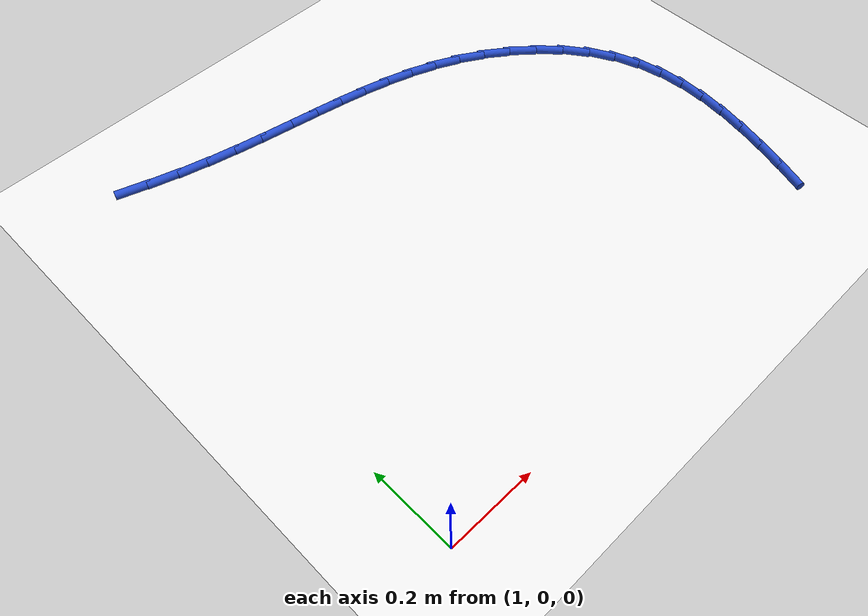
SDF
<sdf version="1.6">
 <world name="default">
  <model name="ground_plane">
   <static>1</static>
   <link name="link">
    <collision name="collision">
     <geometry><plane><normal>0 0 1</normal><size>100 100</size></plane></geometry>
     <surface><friction><ode><mu>100</mu><mu2>50</mu2></ode></friction></surface>
    </collision>
    <visual name="visual">
     <cast_shadows>0</cast_shadows>
     <geometry><plane><normal>0 0 1</normal><size>100 100</size></plane></geometry>
     <material>
      <script><uri>file://media/materials/scripts/gazebo.material</uri><name>Gazebo/WhiteGlow</name></script>
     </material>
    </visual>
   </link>
  </model>
  <model name="line">
   <link name="link_28">
    <pose>1.0675761054680557 1.0647344751387855 0.01 0 1.57 -0.3209154916095877</pose>
    <collision name="collision">
     <geometry><cylinder><radius>0.01</radius><length>0.08</length></cylinder></geometry>
    </collision>
    <visual name="visual">
     <material>
      <script><name>Gazebo/Blue</name><uri>file://media/materials/scripts/gazebo.material</uri></script>
     </material>
     <geometry><cylinder><radius>0.01</radius><length>0.08</length></cylinder></geometry>
    </visual>
   </link>
   <link name="link_29">
    <pose>1.134693563811854 1.0424242464777238 0.01 0 1.57 -0.28615254933465367</pose>
    <collision name="collision">
     <geometry><cylinder><radius>0.01</radius><length>0.08</length></cylinder></geometry>
    </collision>
    <visual name="visual">
     <material>
      <script><name>Gazebo/Blue</name><uri>file://media/materials/scripts/gazebo.material</uri></script>
     </material>
     <geometry><cylinder><radius>0.01</radius><length>0.08</length></cylinder></geometry>
    </visual>
   </link>
   <link name="link_30">
    <pose>1.2016770970256212 1.0227158486725751 0.01 0 1.57 -0.24338765268305662</pose>
    <collision name="collision">
     <geometry><cylinder><radius>0.01</radius><length>0.08</length></cylinder></geometry>
    </collision>
    <visual name="visual">
     <material>
      <script><name>Gazebo/Blue</name><uri>file://media/materials/scripts/gazebo.material</uri></script>
     </material>
     <geometry><cylinder><radius>0.01</radius><length>0.08</length></cylinder></geometry>
    </visual>
   </link>
   <link name="link_31">
    <pose>1.2682371025835748 1.0061883189100853 0.01 0 1.57 -0.20988822675928412</pose>
    <collision name="collision">
     <geometry><cylinder><radius>0.01</radius><length>0.08</length></cylinder></geometry>
    </collision>
    <visual name="visual">
     <material>
      <script><name>Gazebo/Blue</name><uri>file://media/materials/scripts/gazebo.material</uri></script>
     </material>
     <geometry><cylinder><radius>0.01</radius><length>0.08</length></cylinder></geometry>
    </visual>
   </link>
   <link name="link_32">
    <pose>1.3342585128598758 0.9921240686305991 0.01 0 1.57 -0.18753112951149467</pose>
    <collision name="collision">
     <geometry><cylinder><radius>0.01</radius><length>0.08</length></cylinder></geometry>
    </collision>
    <visual name="visual">
     <material>
      <script><name>Gazebo/Blue</name><uri>file://media/materials/scripts/gazebo.material</uri></script>
     </material>
     <geometry><cylinder><radius>0.01</radius><length>0.08</length></cylinder></geometry>
    </visual>
   </link>
   <link name="link_33">
    <pose>1.3996380957625818 0.9797175826879861 0.01 0 1.57 -0.17689413309905302</pose>
    <collision name="collision">
     <geometry><cylinder><radius>0.01</radius><length>0.08</length></cylinder></geometry>
    </collision>
    <visual name="visual">
     <material>
      <script><name>Gazebo/Blue</name><uri>file://media/materials/scripts/gazebo.material</uri></script>
     </material>
     <geometry><cylinder><radius>0.01</radius><length>0.08</length></cylinder></geometry>
    </visual>
   </link>
   <link name="link_34">
    <pose>1.4642726191997506 0.9681633459361156 0.01 0 1.57 -0.17848744052892332</pose>
    <collision name="collision">
     <geometry><cylinder><radius>0.01</radius><length>0.08</length></cylinder></geometry>
    </collision>
    <visual name="visual">
     <material>
      <script><name>Gazebo/Blue</name><uri>file://media/materials/scripts/gazebo.material</uri></script>
     </material>
     <geometry><cylinder><radius>0.01</radius><length>0.08</length></cylinder></geometry>
    </visual>
   </link>
   <link name="link_35">
    <pose>1.5280588510794397 0.9566558432288573 0.01 0 1.57 -0.19279048888477546</pose>
    <collision name="collision">
     <geometry><cylinder><radius>0.01</radius><length>0.08</length></cylinder></geometry>
    </collision>
    <visual name="visual">
     <material>
      <script><name>Gazebo/Blue</name><uri>file://media/materials/scripts/gazebo.material</uri></script>
     </material>
     <geometry><cylinder><radius>0.01</radius><length>0.08</length></cylinder></geometry>
    </visual>
   </link>
   <link name="link_36">
    <pose>1.5908935593097069 0.9443895594200805 0.01 0 1.57 -0.22023712301039977</pose>
    <collision name="collision">
     <geometry><cylinder><radius>0.01</radius><length>0.08</length></cylinder></geometry>
    </collision>
    <visual name="visual">
     <material>
      <script><name>Gazebo/Blue</name><uri>file://media/materials/scripts/gazebo.material</uri></script>
     </material>
     <geometry><cylinder><radius>0.01</radius><length>0.08</length></cylinder></geometry>
    </visual>
   </link>
   <link name="link_37">
    <pose>1.6526735117986098 0.9305589793636547 0.01 0 1.57 -0.26113416115301497</pose>
    <collision name="collision">
     <geometry><cylinder><radius>0.01</radius><length>0.08</length></cylinder></geometry>
    </collision>
    <visual name="visual">
     <material>
      <script><name>Gazebo/Blue</name><uri>file://media/materials/scripts/gazebo.material</uri></script>
     </material>
     <geometry><cylinder><radius>0.01</radius><length>0.08</length></cylinder></geometry>
    </visual>
   </link>
   <link name="link_38">
    <pose>1.7132954764542063 0.9143585879134493 0.01 0 1.57 -0.31550327644231246</pose>
    <collision name="collision">
     <geometry><cylinder><radius>0.01</radius><length>0.08</length></cylinder></geometry>
    </collision>
    <visual name="visual">
     <material>
      <script><name>Gazebo/Blue</name><uri>file://media/materials/scripts/gazebo.material</uri></script>
     </material>
     <geometry><cylinder><radius>0.01</radius><length>0.08</length></cylinder></geometry>
    </visual>
   </link>
   <link name="link_39">
    <pose>1.7726562211845542 0.8949828699233339 0.01 0 1.57 -0.38285334538468285</pose>
    <collision name="collision">
     <geometry><cylinder><radius>0.01</radius><length>0.08</length></cylinder></geometry>
    </collision>
    <visual name="visual">
     <material>
      <script><name>Gazebo/Blue</name><uri>file://media/materials/scripts/gazebo.material</uri></script>
     </material>
     <geometry><cylinder><radius>0.01</radius><length>0.08</length></cylinder></geometry>
    </visual>
   </link>
   <link name="link_40">
    <pose>1.8306525138977103 0.8716263102471774 0.01 0 1.57 -0.46192823847512915</pose>
    <collision name="collision">
     <geometry><cylinder><radius>0.01</radius><length>0.08</length></cylinder></geometry>
    </collision>
    <visual name="visual">
     <material>
      <script><name>Gazebo/Blue</name><uri>file://media/materials/scripts/gazebo.material</uri></script>
     </material>
     <geometry><cylinder><radius>0.01</radius><length>0.08</length></cylinder></geometry>
    </visual>
   </link>
   <link name="link_41">
    <pose>1.8871811225017328 0.84348339373885 0.01 0 1.57 -0.5505024417942268</pose>
    <collision name="collision">
     <geometry><cylinder><radius>0.01</radius><length>0.08</length></cylinder></geometry>
    </collision>
    <visual name="visual">
     <material>
      <script><name>Gazebo/Blue</name><uri>file://media/materials/scripts/gazebo.material</uri></script>
     </material>
     <geometry><cylinder><radius>0.01</radius><length>0.08</length></cylinder></geometry>
    </visual>
   </link>
   <link name="link_42">
    <pose>1.942134524961983 0.8097531747299335 0.01 0 1.57 -0.6436142111896431</pose>
    <collision name="collision">
     <geometry><cylinder><radius>0.01</radius><length>0.08</length></cylinder></geometry>
    </collision>
    <visual name="visual">
     <material>
      <script><name>Gazebo/Blue</name><uri>file://media/materials/scripts/gazebo.material</uri></script>
     </material>
     <geometry><cylinder><radius>0.01</radius><length>0.08</length></cylinder></geometry>
    </visual>
   </link>
   <link name="link_43">
    <pose>1.994909787936023 0.7701624001320424 0.01 0 1.57 -0.7392321456740065</pose>
    <collision name="collision">
     <geometry><cylinder><radius>0.01</radius><length>0.08</length></cylinder></geometry>
    </collision>
    <visual name="visual">
     <material>
      <script><name>Gazebo/Blue</name><uri>file://media/materials/scripts/gazebo.material</uri></script>
     </material>
     <geometry><cylinder><radius>0.01</radius><length>0.08</length></cylinder></geometry>
    </visual>
   </link>
   <link name="link_44">
    <pose>2.0439542918104765 0.7254493852054407 0.01 0 1.57 -0.842858920840327</pose>
    <collision name="collision">
     <geometry><cylinder><radius>0.01</radius><length>0.08</length></cylinder></geometry>
    </collision>
    <visual name="visual">
     <material>
      <script><name>Gazebo/Blue</name><uri>file://media/materials/scripts/gazebo.material</uri></script>
     </material>
     <geometry><cylinder><radius>0.01</radius><length>0.08</length></cylinder></geometry>
    </visual>
   </link>
   <link name="link_45">
    <pose>2.0876080253577096 0.676466834521067 0.01 0 1.57 -0.9610523397277894</pose>
    <collision name="collision">
     <geometry><cylinder><radius>0.01</radius><length>0.08</length></cylinder></geometry>
    </collision>
    <visual name="visual">
     <material>
      <script><name>Gazebo/Blue</name><uri>file://media/materials/scripts/gazebo.material</uri></script>
     </material>
     <geometry><cylinder><radius>0.01</radius><length>0.08</length></cylinder></geometry>
    </visual>
   </link>
   <link name="link_46">
    <pose>2.124210977350093 0.6240674526498611 0.01 0 1.57 -1.1005630137080173</pose>
    <collision name="collision">
     <geometry><cylinder><radius>0.01</radius><length>0.08</length></cylinder></geometry>
    </collision>
    <visual name="visual">
     <material>
      <script><name>Gazebo/Blue</name><uri>file://media/materials/scripts/gazebo.material</uri></script>
     </material>
     <geometry><cylinder><radius>0.01</radius><length>0.08</length></cylinder></geometry>
    </visual>
   </link>
   <link name="link_47">
    <pose>2.1521533064487497 0.569090945508237 0.01 0 1.57 -1.2510363518302663</pose>
    <collision name="collision">
     <geometry><cylinder><radius>0.01</radius><length>0.08</length></cylinder></geometry>
    </collision>
    <visual name="visual">
     <material>
      <script><name>Gazebo/Blue</name><uri>file://media/materials/scripts/gazebo.material</uri></script>
     </material>
     <geometry><cylinder><radius>0.01</radius><length>0.08</length></cylinder></geometry>
    </visual>
   </link>
   <link name="link_48">
    <pose>2.17103651763272 0.5120631679619679 0.01 0 1.57 -1.3915167360778362</pose>
    <collision name="collision">
     <geometry><cylinder><radius>0.01</radius><length>0.08</length></cylinder></geometry>
    </collision>
    <visual name="visual">
     <material>
      <script><name>Gazebo/Blue</name><uri>file://media/materials/scripts/gazebo.material</uri></script>
     </material>
     <geometry><cylinder><radius>0.01</radius><length>0.08</length></cylinder></geometry>
    </visual>
   </link>
   <link name="link_49">
    <pose>2.181706258981841 0.4531876264174662 0.01 0 1.57 -1.5153699108424787</pose>
    <collision name="collision">
     <geometry><cylinder><radius>0.01</radius><length>0.08</length></cylinder></geometry>
    </collision>
    <visual name="visual">
     <material>
      <script><name>Gazebo/Blue</name><uri>file://media/materials/scripts/gazebo.material</uri></script>
     </material>
     <geometry><cylinder><radius>0.01</radius><length>0.08</length></cylinder></geometry>
    </visual>
   </link>
   <link name="link_50">
    <pose>2.1850649092887933 0.392653128764654 0.01 0 1.57 1.5216450842477438</pose>
    <collision name="collision">
     <geometry><cylinder><radius>0.01</radius><length>0.08</length></cylinder></geometry>
    </collision>
    <visual name="visual">
     <material>
      <script><name>Gazebo/Blue</name><uri>file://media/materials/scripts/gazebo.material</uri></script>
     </material>
     <geometry><cylinder><radius>0.01</radius><length>0.08</length></cylinder></geometry>
    </visual>
   </link>
   <link name="link_51">
    <pose>2.182014847346254 0.3306484828934533 0.01 0 1.57 1.4364091655086257</pose>
    <collision name="collision">
     <geometry><cylinder><radius>0.01</radius><length>0.08</length></cylinder></geometry>
    </collision>
    <visual name="visual">
     <material>
      <script><name>Gazebo/Blue</name><uri>file://media/materials/scripts/gazebo.material</uri></script>
     </material>
     <geometry><cylinder><radius>0.01</radius><length>0.08</length></cylinder></geometry>
    </visual>
   </link>
   <link name="link_52">
    <pose>2.173458451946905 0.2673624966937861 0.01 0 1.57 1.369153011037056</pose>
    <collision name="collision">
     <geometry><cylinder><radius>0.01</radius><length>0.08</length></cylinder></geometry>
    </collision>
    <visual name="visual">
     <material>
      <script><name>Gazebo/Blue</name><uri>file://media/materials/scripts/gazebo.material</uri></script>
     </material>
     <geometry><cylinder><radius>0.01</radius><length>0.08</length></cylinder></geometry>
    </visual>
   </link>
   <link name="link_53">
    <pose>2.160298101883424 0.2029839780555744 0.01 0 1.57 1.318028139747178</pose>
    <collision name="collision">
     <geometry><cylinder><radius>0.01</radius><length>0.08</length></cylinder></geometry>
    </collision>
    <visual name="visual">
     <material>
      <script><name>Gazebo/Blue</name><uri>file://media/materials/scripts/gazebo.material</uri></script>
     </material>
     <geometry><cylinder><radius>0.01</radius><length>0.08</length></cylinder></geometry>
    </visual>
   </link>
   <link name="link_54">
    <pose>2.1434361759484912 0.1377017348687404 0.01 0 1.57 1.2812593294757717</pose>
    <collision name="collision">
     <geometry><cylinder><radius>0.01</radius><length>0.08</length></cylinder></geometry>
    </collision>
    <visual name="visual">
     <material>
      <script><name>Gazebo/Blue</name><uri>file://media/materials/scripts/gazebo.material</uri></script>
     </material>
     <geometry><cylinder><radius>0.01</radius><length>0.08</length></cylinder></geometry>
    </visual>
   </link>
   <link name="link_55">
    <pose>2.1237750529347865 0.0717045750232061 0.01 0 1.57 1.2574092709500935</pose>
    <collision name="collision">
     <geometry><cylinder><radius>0.01</radius><length>0.08</length></cylinder></geometry>
    </collision>
    <visual name="visual">
     <material>
      <script><name>Gazebo/Blue</name><uri>file://media/materials/scripts/gazebo.material</uri></script>
     </material>
     <geometry><cylinder><radius>0.01</radius><length>0.08</length></cylinder></geometry>
    </visual>
   </link>
  </model>
 </world>
</sdf>
